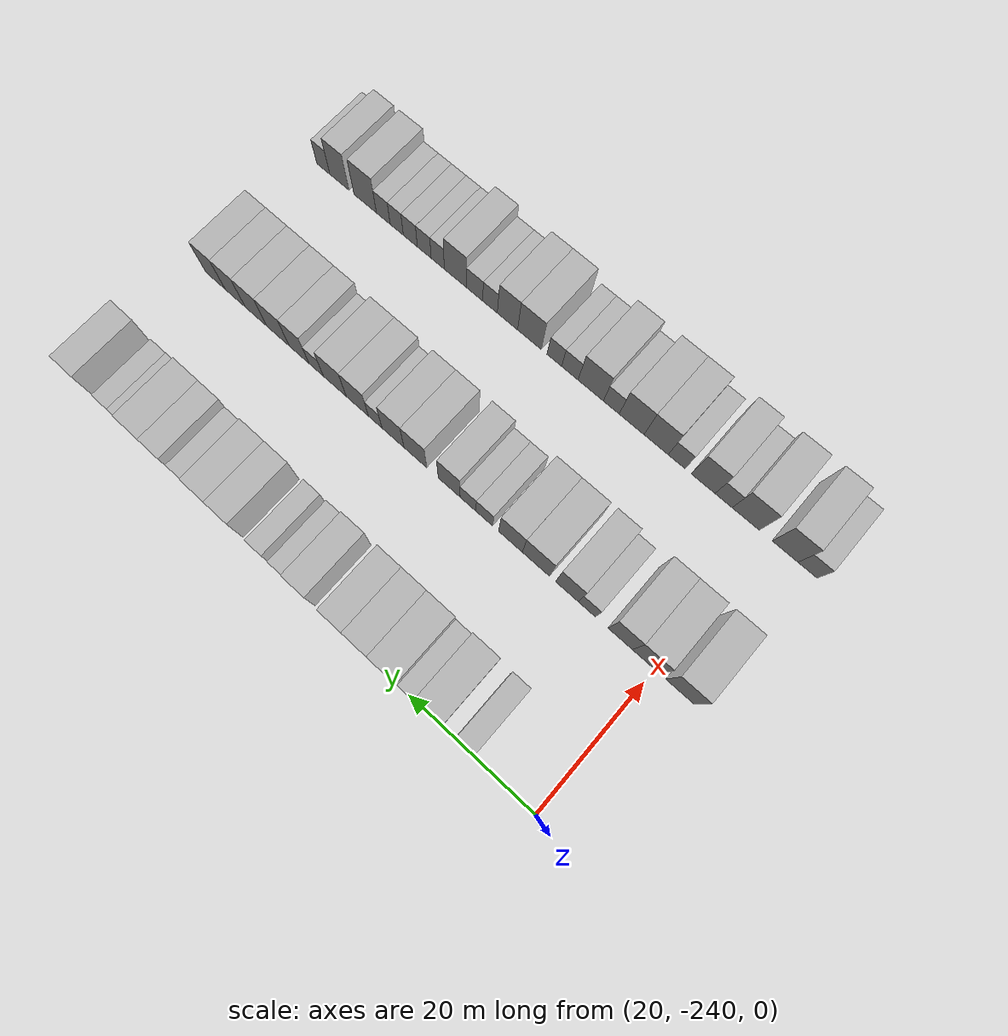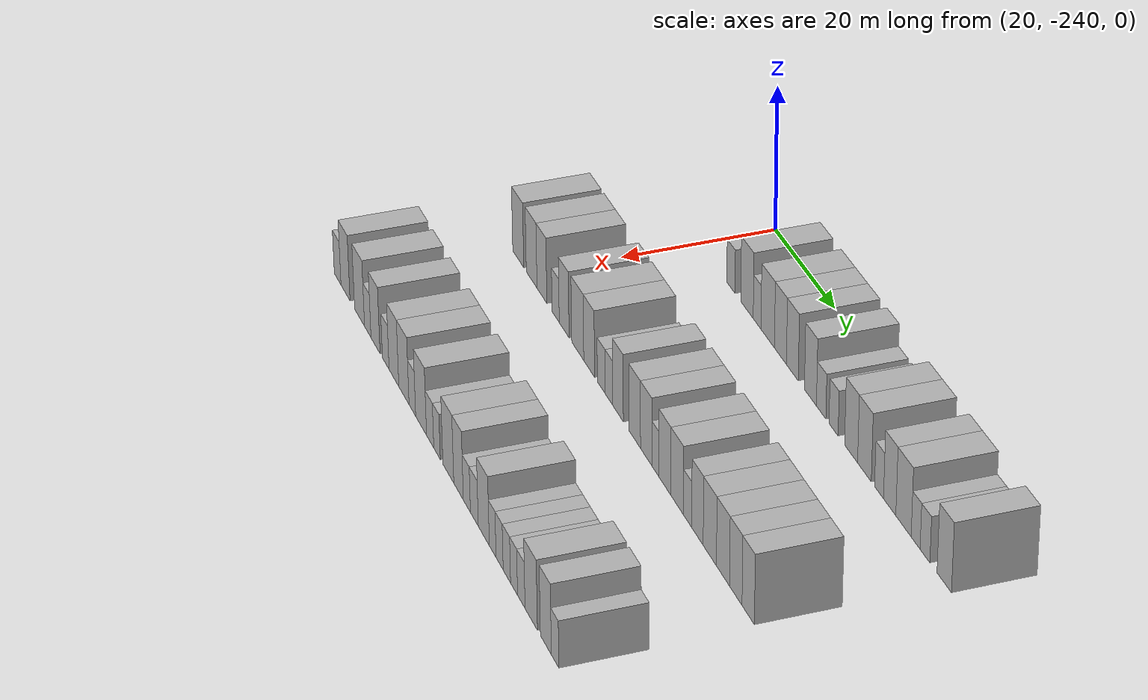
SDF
<sdf version="1.6">
 <world name="default">
  <model name="building_1">
   <static>1</static>
   <pose>25.0000 -228.7704 0 0.000000 0.000000 0.000000</pose>
   <link name="link">
    <pose>0 0 3.00 0 0 0</pose>
    <collision name="collision"><geometry><box><size>10.0000 2.8197 6.0000</size></box></geometry></collision>
    <visual name="visual">
     <cast_shadows>0</cast_shadows>
     <geometry><box><size>10.0000 2.8197 6.0000</size></box></geometry>
     <material>
      <script>
       <uri>model://HANNAS_wall/materials/scripts</uri>
       <uri>model://HANNAS_wall/materials/textures</uri>
       <name>vrc/HANNAS_wall</name>
      </script>
     </material>
    </visual>
   </link>
  </model>
  <model name="building_2">
   <static>1</static>
   <pose>25.0000 -223.2506 0 0.000000 0.000000 0.000000</pose>
   <link name="link">
    <pose>0 0 4.50 0 0 0</pose>
    <collision name="collision"><geometry><box><size>10.0000 4.2198 9.0000</size></box></geometry></collision>
    <visual name="visual">
     <cast_shadows>0</cast_shadows>
     <geometry><box><size>10.0000 4.2198 9.0000</size></box></geometry>
     <material>
      <script>
       <uri>model://HANNAS_wall/materials/scripts</uri>
       <uri>model://HANNAS_wall/materials/textures</uri>
       <name>vrc/HANNAS_wall</name>
      </script>
     </material>
    </visual>
   </link>
  </model>
  <model name="building_3">
   <static>1</static>
   <pose>25.0000 -219.8380 0 0.000000 0.000000 0.000000</pose>
   <link name="link">
    <pose>0 0 3.00 0 0 0</pose>
    <collision name="collision"><geometry><box><size>10.0000 2.6054 6.0000</size></box></geometry></collision>
    <visual name="visual">
     <cast_shadows>0</cast_shadows>
     <geometry><box><size>10.0000 2.6054 6.0000</size></box></geometry>
     <material>
      <script>
       <uri>model://HANNAS_wall/materials/scripts</uri>
       <uri>model://HANNAS_wall/materials/textures</uri>
       <name>vrc/HANNAS_wall</name>
      </script>
     </material>
    </visual>
   </link>
  </model>
  <model name="building_4">
   <static>1</static>
   <pose>25.0000 -216.2932 0 0.000000 0.000000 0.000000</pose>
   <link name="link">
    <pose>0 0 4.50 0 0 0</pose>
    <collision name="collision"><geometry><box><size>10.0000 4.4841 9.0000</size></box></geometry></collision>
    <visual name="visual">
     <cast_shadows>0</cast_shadows>
     <geometry><box><size>10.0000 4.4841 9.0000</size></box></geometry>
     <material>
      <script>
       <uri>model://HANNAS_wall/materials/scripts</uri>
       <uri>model://HANNAS_wall/materials/textures</uri>
       <name>vrc/HANNAS_wall</name>
      </script>
     </material>
    </visual>
   </link>
  </model>
  <model name="building_5">
   <static>1</static>
   <pose>25.0000 -212.0790 0 0.000000 0.000000 0.000000</pose>
   <link name="link">
    <pose>0 0 4.50 0 0 0</pose>
    <collision name="collision"><geometry><box><size>10.0000 3.9443 9.0000</size></box></geometry></collision>
    <visual name="visual">
     <cast_shadows>0</cast_shadows>
     <geometry><box><size>10.0000 3.9443 9.0000</size></box></geometry>
     <material>
      <script>
       <uri>model://HANNAS_wall/materials/scripts</uri>
       <uri>model://HANNAS_wall/materials/textures</uri>
       <name>vrc/HANNAS_wall</name>
      </script>
     </material>
    </visual>
   </link>
  </model>
  <model name="building_6">
   <static>1</static>
   <pose>25.0000 -208.1779 0 0.000000 0.000000 0.000000</pose>
   <link name="link">
    <pose>0 0 4.50 0 0 0</pose>
    <collision name="collision"><geometry><box><size>10.0000 3.8578 9.0000</size></box></geometry></collision>
    <visual name="visual">
     <cast_shadows>0</cast_shadows>
     <geometry><box><size>10.0000 3.8578 9.0000</size></box></geometry>
     <material>
      <script>
       <uri>model://HANNAS_wall/materials/scripts</uri>
       <uri>model://HANNAS_wall/materials/textures</uri>
       <name>vrc/HANNAS_wall</name>
      </script>
     </material>
    </visual>
   </link>
  </model>
  <model name="building_7">
   <static>1</static>
   <pose>25.0000 -202.3399 0 0.000000 0.000000 0.000000</pose>
   <link name="link">
    <pose>0 0 4.50 0 0 0</pose>
    <collision name="collision"><geometry><box><size>10.0000 3.8181 9.0000</size></box></geometry></collision>
    <visual name="visual">
     <cast_shadows>0</cast_shadows>
     <geometry><box><size>10.0000 3.8181 9.0000</size></box></geometry>
     <material>
      <script>
       <uri>model://HANNAS_wall/materials/scripts</uri>
       <uri>model://HANNAS_wall/materials/textures</uri>
       <name>vrc/HANNAS_wall</name>
      </script>
     </material>
    </visual>
   </link>
  </model>
  <model name="building_8">
   <static>1</static>
   <pose>25.0000 -198.9466 0 0.000000 0.000000 0.000000</pose>
   <link name="link">
    <pose>0 0 3.00 0 0 0</pose>
    <collision name="collision"><geometry><box><size>10.0000 2.9685 6.0000</size></box></geometry></collision>
    <visual name="visual">
     <cast_shadows>0</cast_shadows>
     <geometry><box><size>10.0000 2.9685 6.0000</size></box></geometry>
     <material>
      <script>
       <uri>model://HANNAS_wall/materials/scripts</uri>
       <uri>model://HANNAS_wall/materials/textures</uri>
       <name>vrc/HANNAS_wall</name>
      </script>
     </material>
    </visual>
   </link>
  </model>
  <model name="building_9">
   <static>1</static>
   <pose>25.0000 -195.0524 0 0.000000 0.000000 0.000000</pose>
   <link name="link">
    <pose>0 0 3.00 0 0 0</pose>
    <collision name="collision"><geometry><box><size>10.0000 2.8199 6.0000</size></box></geometry></collision>
    <visual name="visual">
     <cast_shadows>0</cast_shadows>
     <geometry><box><size>10.0000 2.8199 6.0000</size></box></geometry>
     <material>
      <script>
       <uri>model://HANNAS_wall/materials/scripts</uri>
       <uri>model://HANNAS_wall/materials/textures</uri>
       <name>vrc/HANNAS_wall</name>
      </script>
     </material>
    </visual>
   </link>
  </model>
  <model name="building_10">
   <static>1</static>
   <pose>25.0000 -189.6579 0 0.000000 0.000000 0.000000</pose>
   <link name="link">
    <pose>0 0 4.50 0 0 0</pose>
    <collision name="collision"><geometry><box><size>10.0000 3.9692 9.0000</size></box></geometry></collision>
    <visual name="visual">
     <cast_shadows>0</cast_shadows>
     <geometry><box><size>10.0000 3.9692 9.0000</size></box></geometry>
     <material>
      <script>
       <uri>model://HANNAS_wall/materials/scripts</uri>
       <uri>model://HANNAS_wall/materials/textures</uri>
       <name>vrc/HANNAS_wall</name>
      </script>
     </material>
    </visual>
   </link>
  </model>
  <model name="building_11">
   <static>1</static>
   <pose>25.0000 -185.6119 0 0.000000 0.000000 0.000000</pose>
   <link name="link">
    <pose>0 0 4.50 0 0 0</pose>
    <collision name="collision"><geometry><box><size>10.0000 4.1227 9.0000</size></box></geometry></collision>
    <visual name="visual">
     <cast_shadows>0</cast_shadows>
     <geometry><box><size>10.0000 4.1227 9.0000</size></box></geometry>
     <material>
      <script>
       <uri>model://HANNAS_wall/materials/scripts</uri>
       <uri>model://HANNAS_wall/materials/textures</uri>
       <name>vrc/HANNAS_wall</name>
      </script>
     </material>
    </visual>
   </link>
  </model>
  <model name="building_12">
   <static>1</static>
   <pose>25.0000 -181.2308 0 0.000000 0.000000 0.000000</pose>
   <link name="link">
    <pose>0 0 3.00 0 0 0</pose>
    <collision name="collision"><geometry><box><size>10.0000 2.6395 6.0000</size></box></geometry></collision>
    <visual name="visual">
     <cast_shadows>0</cast_shadows>
     <geometry><box><size>10.0000 2.6395 6.0000</size></box></geometry>
     <material>
      <script>
       <uri>model://HANNAS_wall/materials/scripts</uri>
       <uri>model://HANNAS_wall/materials/textures</uri>
       <name>vrc/HANNAS_wall</name>
      </script>
     </material>
    </visual>
   </link>
  </model>
  <model name="building_13">
   <static>1</static>
   <pose>25.0000 -178.1024 0 0.000000 0.000000 0.000000</pose>
   <link name="link">
    <pose>0 0 4.50 0 0 0</pose>
    <collision name="collision"><geometry><box><size>10.0000 3.6172 9.0000</size></box></geometry></collision>
    <visual name="visual">
     <cast_shadows>0</cast_shadows>
     <geometry><box><size>10.0000 3.6172 9.0000</size></box></geometry>
     <material>
      <script>
       <uri>model://HANNAS_wall/materials/scripts</uri>
       <uri>model://HANNAS_wall/materials/textures</uri>
       <name>vrc/HANNAS_wall</name>
      </script>
     </material>
    </visual>
   </link>
  </model>
  <model name="building_14">
   <static>1</static>
   <pose>25.0000 -174.0741 0 0.000000 0.000000 0.000000</pose>
   <link name="link">
    <pose>0 0 4.50 0 0 0</pose>
    <collision name="collision"><geometry><box><size>10.0000 4.4394 9.0000</size></box></geometry></collision>
    <visual name="visual">
     <cast_shadows>0</cast_shadows>
     <geometry><box><size>10.0000 4.4394 9.0000</size></box></geometry>
     <material>
      <script>
       <uri>model://HANNAS_wall/materials/scripts</uri>
       <uri>model://HANNAS_wall/materials/textures</uri>
       <name>vrc/HANNAS_wall</name>
      </script>
     </material>
    </visual>
   </link>
  </model>
  <model name="building_15">
   <static>1</static>
   <pose>25.0000 -170.5755 0 0.000000 0.000000 0.000000</pose>
   <link name="link">
    <pose>0 0 3.00 0 0 0</pose>
    <collision name="collision"><geometry><box><size>10.0000 2.5579 6.0000</size></box></geometry></collision>
    <visual name="visual">
     <cast_shadows>0</cast_shadows>
     <geometry><box><size>10.0000 2.5579 6.0000</size></box></geometry>
     <material>
      <script>
       <uri>model://HANNAS_wall/materials/scripts</uri>
       <uri>model://HANNAS_wall/materials/textures</uri>
       <name>vrc/HANNAS_wall</name>
      </script>
     </material>
    </visual>
   </link>
  </model>
  <model name="building_16">
   <static>1</static>
   <pose>25.0000 -167.9083 0 0.000000 0.000000 0.000000</pose>
   <link name="link">
    <pose>0 0 3.00 0 0 0</pose>
    <collision name="collision"><geometry><box><size>10.0000 2.7765 6.0000</size></box></geometry></collision>
    <visual name="visual">
     <cast_shadows>0</cast_shadows>
     <geometry><box><size>10.0000 2.7765 6.0000</size></box></geometry>
     <material>
      <script>
       <uri>model://HANNAS_wall/materials/scripts</uri>
       <uri>model://HANNAS_wall/materials/textures</uri>
       <name>vrc/HANNAS_wall</name>
      </script>
     </material>
    </visual>
   </link>
  </model>
  <model name="building_17">
   <static>1</static>
   <pose>25.0000 -162.5040 0 0.000000 0.000000 0.000000</pose>
   <link name="link">
    <pose>0 0 4.50 0 0 0</pose>
    <collision name="collision"><geometry><box><size>10.0000 4.0319 9.0000</size></box></geometry></collision>
    <visual name="visual">
     <cast_shadows>0</cast_shadows>
     <geometry><box><size>10.0000 4.0319 9.0000</size></box></geometry>
     <material>
      <script>
       <uri>model://HANNAS_wall/materials/scripts</uri>
       <uri>model://HANNAS_wall/materials/textures</uri>
       <name>vrc/HANNAS_wall</name>
      </script>
     </material>
    </visual>
   </link>
  </model>
  <model name="building_123">
   <static>1</static>
   <pose>47.0000 -243.8187 0 0.000000 0.000000 0.000000</pose>
   <link name="link">
    <pose>0 0 4.50 0 0 0</pose>
    <collision name="collision"><geometry><box><size>10.0000 4.3626 9.0000</size></box></geometry></collision>
    <visual name="visual">
     <cast_shadows>0</cast_shadows>
     <geometry><box><size>10.0000 4.3626 9.0000</size></box></geometry>
     <material>
      <script>
       <uri>model://HANNAS_wall/materials/scripts</uri>
       <uri>model://HANNAS_wall/materials/textures</uri>
       <name>vrc/HANNAS_wall</name>
      </script>
     </material>
    </visual>
   </link>
  </model>
  <model name="building_124">
   <static>1</static>
   <pose>47.0000 -238.5457 0 0.000000 0.000000 0.000000</pose>
   <link name="link">
    <pose>0 0 4.50 0 0 0</pose>
    <collision name="collision"><geometry><box><size>10.0000 4.1833 9.0000</size></box></geometry></collision>
    <visual name="visual">
     <cast_shadows>0</cast_shadows>
     <geometry><box><size>10.0000 4.1833 9.0000</size></box></geometry>
     <material>
      <script>
       <uri>model://HANNAS_wall/materials/scripts</uri>
       <uri>model://HANNAS_wall/materials/textures</uri>
       <name>vrc/HANNAS_wall</name>
      </script>
     </material>
    </visual>
   </link>
  </model>
  <model name="building_125">
   <static>1</static>
   <pose>47.0000 -234.5533 0 0.000000 0.000000 0.000000</pose>
   <link name="link">
    <pose>0 0 4.50 0 0 0</pose>
    <collision name="collision"><geometry><box><size>10.0000 3.8015 9.0000</size></box></geometry></collision>
    <visual name="visual">
     <cast_shadows>0</cast_shadows>
     <geometry><box><size>10.0000 3.8015 9.0000</size></box></geometry>
     <material>
      <script>
       <uri>model://HANNAS_wall/materials/scripts</uri>
       <uri>model://HANNAS_wall/materials/textures</uri>
       <name>vrc/HANNAS_wall</name>
      </script>
     </material>
    </visual>
   </link>
  </model>
  <model name="building_126">
   <static>1</static>
   <pose>47.0000 -229.2931 0 0.000000 0.000000 0.000000</pose>
   <link name="link">
    <pose>0 0 3.00 0 0 0</pose>
    <collision name="collision"><geometry><box><size>10.0000 2.7189 6.0000</size></box></geometry></collision>
    <visual name="visual">
     <cast_shadows>0</cast_shadows>
     <geometry><box><size>10.0000 2.7189 6.0000</size></box></geometry>
     <material>
      <script>
       <uri>model://HANNAS_wall/materials/scripts</uri>
       <uri>model://HANNAS_wall/materials/textures</uri>
       <name>vrc/HANNAS_wall</name>
      </script>
     </material>
    </visual>
   </link>
  </model>
  <model name="building_127">
   <static>1</static>
   <pose>47.0000 -226.0896 0 0.000000 0.000000 0.000000</pose>
   <link name="link">
    <pose>0 0 4.50 0 0 0</pose>
    <collision name="collision"><geometry><box><size>10.0000 3.6881 9.0000</size></box></geometry></collision>
    <visual name="visual">
     <cast_shadows>0</cast_shadows>
     <geometry><box><size>10.0000 3.6881 9.0000</size></box></geometry>
     <material>
      <script>
       <uri>model://HANNAS_wall/materials/scripts</uri>
       <uri>model://HANNAS_wall/materials/textures</uri>
       <name>vrc/HANNAS_wall</name>
      </script>
     </material>
    </visual>
   </link>
  </model>
  <model name="building_128">
   <static>1</static>
   <pose>47.0000 -221.0190 0 0.000000 0.000000 0.000000</pose>
   <link name="link">
    <pose>0 0 4.50 0 0 0</pose>
    <collision name="collision"><geometry><box><size>10.0000 4.4533 9.0000</size></box></geometry></collision>
    <visual name="visual">
     <cast_shadows>0</cast_shadows>
     <geometry><box><size>10.0000 4.4533 9.0000</size></box></geometry>
     <material>
      <script>
       <uri>model://HANNAS_wall/materials/scripts</uri>
       <uri>model://HANNAS_wall/materials/textures</uri>
       <name>vrc/HANNAS_wall</name>
      </script>
     </material>
    </visual>
   </link>
  </model>
  <model name="building_129">
   <static>1</static>
   <pose>47.0000 -216.8144 0 0.000000 0.000000 0.000000</pose>
   <link name="link">
    <pose>0 0 4.50 0 0 0</pose>
    <collision name="collision"><geometry><box><size>10.0000 3.9557 9.0000</size></box></geometry></collision>
    <visual name="visual">
     <cast_shadows>0</cast_shadows>
     <geometry><box><size>10.0000 3.9557 9.0000</size></box></geometry>
     <material>
      <script>
       <uri>model://HANNAS_wall/materials/scripts</uri>
       <uri>model://HANNAS_wall/materials/textures</uri>
       <name>vrc/HANNAS_wall</name>
      </script>
     </material>
    </visual>
   </link>
  </model>
  <model name="building_130">
   <static>1</static>
   <pose>47.0000 -212.4229 0 0.000000 0.000000 0.000000</pose>
   <link name="link">
    <pose>0 0 3.00 0 0 0</pose>
    <collision name="collision"><geometry><box><size>10.0000 2.8273 6.0000</size></box></geometry></collision>
    <visual name="visual">
     <cast_shadows>0</cast_shadows>
     <geometry><box><size>10.0000 2.8273 6.0000</size></box></geometry>
     <material>
      <script>
       <uri>model://HANNAS_wall/materials/scripts</uri>
       <uri>model://HANNAS_wall/materials/textures</uri>
       <name>vrc/HANNAS_wall</name>
      </script>
     </material>
    </visual>
   </link>
  </model>
  <model name="building_131">
   <static>1</static>
   <pose>47.0000 -209.6768 0 0.000000 0.000000 0.000000</pose>
   <link name="link">
    <pose>0 0 3.00 0 0 0</pose>
    <collision name="collision"><geometry><box><size>10.0000 2.6649 6.0000</size></box></geometry></collision>
    <visual name="visual">
     <cast_shadows>0</cast_shadows>
     <geometry><box><size>10.0000 2.6649 6.0000</size></box></geometry>
     <material>
      <script>
       <uri>model://HANNAS_wall/materials/scripts</uri>
       <uri>model://HANNAS_wall/materials/textures</uri>
       <name>vrc/HANNAS_wall</name>
      </script>
     </material>
    </visual>
   </link>
  </model>
  <model name="building_132">
   <static>1</static>
   <pose>47.0000 -206.4759 0 0.000000 0.000000 0.000000</pose>
   <link name="link">
    <pose>0 0 4.50 0 0 0</pose>
    <collision name="collision"><geometry><box><size>10.0000 3.7370 9.0000</size></box></geometry></collision>
    <visual name="visual">
     <cast_shadows>0</cast_shadows>
     <geometry><box><size>10.0000 3.7370 9.0000</size></box></geometry>
     <material>
      <script>
       <uri>model://HANNAS_wall/materials/scripts</uri>
       <uri>model://HANNAS_wall/materials/textures</uri>
       <name>vrc/HANNAS_wall</name>
      </script>
     </material>
    </visual>
   </link>
  </model>
  <model name="building_133">
   <static>1</static>
   <pose>47.0000 -200.6277 0 0.000000 0.000000 0.000000</pose>
   <link name="link">
    <pose>0 0 4.50 0 0 0</pose>
    <collision name="collision"><geometry><box><size>10.0000 3.9593 9.0000</size></box></geometry></collision>
    <visual name="visual">
     <cast_shadows>0</cast_shadows>
     <geometry><box><size>10.0000 3.9593 9.0000</size></box></geometry>
     <material>
      <script>
       <uri>model://HANNAS_wall/materials/scripts</uri>
       <uri>model://HANNAS_wall/materials/textures</uri>
       <name>vrc/HANNAS_wall</name>
      </script>
     </material>
    </visual>
   </link>
  </model>
  <model name="building_134">
   <static>1</static>
   <pose>47.0000 -196.7128 0 0.000000 0.000000 0.000000</pose>
   <link name="link">
    <pose>0 0 4.50 0 0 0</pose>
    <collision name="collision"><geometry><box><size>10.0000 3.8705 9.0000</size></box></geometry></collision>
    <visual name="visual">
     <cast_shadows>0</cast_shadows>
     <geometry><box><size>10.0000 3.8705 9.0000</size></box></geometry>
     <material>
      <script>
       <uri>model://HANNAS_wall/materials/scripts</uri>
       <uri>model://HANNAS_wall/materials/textures</uri>
       <name>vrc/HANNAS_wall</name>
      </script>
     </material>
    </visual>
   </link>
  </model>
  <model name="building_135">
   <static>1</static>
   <pose>47.0000 -193.5745 0 0.000000 0.000000 0.000000</pose>
   <link name="link">
    <pose>0 0 3.00 0 0 0</pose>
    <collision name="collision"><geometry><box><size>10.0000 2.4060 6.0000</size></box></geometry></collision>
    <visual name="visual">
     <cast_shadows>0</cast_shadows>
     <geometry><box><size>10.0000 2.4060 6.0000</size></box></geometry>
     <material>
      <script>
       <uri>model://HANNAS_wall/materials/scripts</uri>
       <uri>model://HANNAS_wall/materials/textures</uri>
       <name>vrc/HANNAS_wall</name>
      </script>
     </material>
    </visual>
   </link>
  </model>
  <model name="building_136">
   <static>1</static>
   <pose>47.0000 -190.3718 0 0.000000 0.000000 0.000000</pose>
   <link name="link">
    <pose>0 0 4.50 0 0 0</pose>
    <collision name="collision"><geometry><box><size>10.0000 3.9995 9.0000</size></box></geometry></collision>
    <visual name="visual">
     <cast_shadows>0</cast_shadows>
     <geometry><box><size>10.0000 3.9995 9.0000</size></box></geometry>
     <material>
      <script>
       <uri>model://HANNAS_wall/materials/scripts</uri>
       <uri>model://HANNAS_wall/materials/textures</uri>
       <name>vrc/HANNAS_wall</name>
      </script>
     </material>
    </visual>
   </link>
  </model>
  <model name="building_137">
   <static>1</static>
   <pose>47.0000 -186.2881 0 0.000000 0.000000 0.000000</pose>
   <link name="link">
    <pose>0 0 4.50 0 0 0</pose>
    <collision name="collision"><geometry><box><size>10.0000 4.1679 9.0000</size></box></geometry></collision>
    <visual name="visual">
     <cast_shadows>0</cast_shadows>
     <geometry><box><size>10.0000 4.1679 9.0000</size></box></geometry>
     <material>
      <script>
       <uri>model://HANNAS_wall/materials/scripts</uri>
       <uri>model://HANNAS_wall/materials/textures</uri>
       <name>vrc/HANNAS_wall</name>
      </script>
     </material>
    </visual>
   </link>
  </model>
  <model name="building_138">
   <static>1</static>
   <pose>47.0000 -182.8716 0 0.000000 0.000000 0.000000</pose>
   <link name="link">
    <pose>0 0 3.00 0 0 0</pose>
    <collision name="collision"><geometry><box><size>10.0000 2.6651 6.0000</size></box></geometry></collision>
    <visual name="visual">
     <cast_shadows>0</cast_shadows>
     <geometry><box><size>10.0000 2.6651 6.0000</size></box></geometry>
     <material>
      <script>
       <uri>model://HANNAS_wall/materials/scripts</uri>
       <uri>model://HANNAS_wall/materials/textures</uri>
       <name>vrc/HANNAS_wall</name>
      </script>
     </material>
    </visual>
   </link>
  </model>
  <model name="building_139">
   <static>1</static>
   <pose>47.0000 -179.7136 0 0.000000 0.000000 0.000000</pose>
   <link name="link">
    <pose>0 0 4.50 0 0 0</pose>
    <collision name="collision"><geometry><box><size>10.0000 3.6508 9.0000</size></box></geometry></collision>
    <visual name="visual">
     <cast_shadows>0</cast_shadows>
     <geometry><box><size>10.0000 3.6508 9.0000</size></box></geometry>
     <material>
      <script>
       <uri>model://HANNAS_wall/materials/scripts</uri>
       <uri>model://HANNAS_wall/materials/textures</uri>
       <name>vrc/HANNAS_wall</name>
      </script>
     </material>
    </visual>
   </link>
  </model>
  <model name="building_140">
   <static>1</static>
   <pose>47.0000 -175.7769 0 0.000000 0.000000 0.000000</pose>
   <link name="link">
    <pose>0 0 4.50 0 0 0</pose>
    <collision name="collision"><geometry><box><size>10.0000 4.2226 9.0000</size></box></geometry></collision>
    <visual name="visual">
     <cast_shadows>0</cast_shadows>
     <geometry><box><size>10.0000 4.2226 9.0000</size></box></geometry>
     <material>
      <script>
       <uri>model://HANNAS_wall/materials/scripts</uri>
       <uri>model://HANNAS_wall/materials/textures</uri>
       <name>vrc/HANNAS_wall</name>
      </script>
     </material>
    </visual>
   </link>
  </model>
  <model name="building_141">
   <static>1</static>
   <pose>47.0000 -171.6212 0 0.000000 0.000000 0.000000</pose>
   <link name="link">
    <pose>0 0 4.50 0 0 0</pose>
    <collision name="collision"><geometry><box><size>10.0000 4.0888 9.0000</size></box></geometry></collision>
    <visual name="visual">
     <cast_shadows>0</cast_shadows>
     <geometry><box><size>10.0000 4.0888 9.0000</size></box></geometry>
     <material>
      <script>
       <uri>model://HANNAS_wall/materials/scripts</uri>
       <uri>model://HANNAS_wall/materials/textures</uri>
       <name>vrc/HANNAS_wall</name>
      </script>
     </material>
    </visual>
   </link>
  </model>
  <model name="building_142">
   <static>1</static>
   <pose>47.0000 -167.6529 0 0.000000 0.000000 0.000000</pose>
   <link name="link">
    <pose>0 0 4.50 0 0 0</pose>
    <collision name="collision"><geometry><box><size>10.0000 3.8476 9.0000</size></box></geometry></collision>
    <visual name="visual">
     <cast_shadows>0</cast_shadows>
     <geometry><box><size>10.0000 3.8476 9.0000</size></box></geometry>
     <material>
      <script>
       <uri>model://HANNAS_wall/materials/scripts</uri>
       <uri>model://HANNAS_wall/materials/textures</uri>
       <name>vrc/HANNAS_wall</name>
      </script>
     </material>
    </visual>
   </link>
  </model>
  <model name="building_143">
   <static>1</static>
   <pose>47.0000 -163.8472 0 0.000000 0.000000 0.000000</pose>
   <link name="link">
    <pose>0 0 4.50 0 0 0</pose>
    <collision name="collision"><geometry><box><size>10.0000 3.7638 9.0000</size></box></geometry></collision>
    <visual name="visual">
     <cast_shadows>0</cast_shadows>
     <geometry><box><size>10.0000 3.7638 9.0000</size></box></geometry>
     <material>
      <script>
       <uri>model://HANNAS_wall/materials/scripts</uri>
       <uri>model://HANNAS_wall/materials/textures</uri>
       <name>vrc/HANNAS_wall</name>
      </script>
     </material>
    </visual>
   </link>
  </model>
  <model name="building_255">
   <static>1</static>
   <pose>69.0000 -246.5243 0 0.000000 0.000000 0.000000</pose>
   <link name="link">
    <pose>0 0 3.00 0 0 0</pose>
    <collision name="collision"><geometry><box><size>10.0000 2.9514 6.0000</size></box></geometry></collision>
    <visual name="visual">
     <cast_shadows>0</cast_shadows>
     <geometry><box><size>10.0000 2.9514 6.0000</size></box></geometry>
     <material>
      <script>
       <uri>model://HANNAS_wall/materials/scripts</uri>
       <uri>model://HANNAS_wall/materials/textures</uri>
       <name>vrc/HANNAS_wall</name>
      </script>
     </material>
    </visual>
   </link>
  </model>
  <model name="building_256">
   <static>1</static>
   <pose>69.0000 -243.0590 0 0.000000 0.000000 0.000000</pose>
   <link name="link">
    <pose>0 0 4.50 0 0 0</pose>
    <collision name="collision"><geometry><box><size>10.0000 3.9793 9.0000</size></box></geometry></collision>
    <visual name="visual">
     <cast_shadows>0</cast_shadows>
     <geometry><box><size>10.0000 3.9793 9.0000</size></box></geometry>
     <material>
      <script>
       <uri>model://HANNAS_wall/materials/scripts</uri>
       <uri>model://HANNAS_wall/materials/textures</uri>
       <name>vrc/HANNAS_wall</name>
      </script>
     </material>
    </visual>
   </link>
  </model>
  <model name="building_257">
   <static>1</static>
   <pose>69.0000 -236.9261 0 0.000000 0.000000 0.000000</pose>
   <link name="link">
    <pose>0 0 4.50 0 0 0</pose>
    <collision name="collision"><geometry><box><size>10.0000 4.2864 9.0000</size></box></geometry></collision>
    <visual name="visual">
     <cast_shadows>0</cast_shadows>
     <geometry><box><size>10.0000 4.2864 9.0000</size></box></geometry>
     <material>
      <script>
       <uri>model://HANNAS_wall/materials/scripts</uri>
       <uri>model://HANNAS_wall/materials/textures</uri>
       <name>vrc/HANNAS_wall</name>
      </script>
     </material>
    </visual>
   </link>
  </model>
  <model name="building_258">
   <static>1</static>
   <pose>69.0000 -233.4128 0 0.000000 0.000000 0.000000</pose>
   <link name="link">
    <pose>0 0 3.00 0 0 0</pose>
    <collision name="collision"><geometry><box><size>10.0000 2.7403 6.0000</size></box></geometry></collision>
    <visual name="visual">
     <cast_shadows>0</cast_shadows>
     <geometry><box><size>10.0000 2.7403 6.0000</size></box></geometry>
     <material>
      <script>
       <uri>model://HANNAS_wall/materials/scripts</uri>
       <uri>model://HANNAS_wall/materials/textures</uri>
       <name>vrc/HANNAS_wall</name>
      </script>
     </material>
    </visual>
   </link>
  </model>
  <model name="building_259">
   <static>1</static>
   <pose>69.0000 -230.1309 0 0.000000 0.000000 0.000000</pose>
   <link name="link">
    <pose>0 0 4.50 0 0 0</pose>
    <collision name="collision"><geometry><box><size>10.0000 3.8235 9.0000</size></box></geometry></collision>
    <visual name="visual">
     <cast_shadows>0</cast_shadows>
     <geometry><box><size>10.0000 3.8235 9.0000</size></box></geometry>
     <material>
      <script>
       <uri>model://HANNAS_wall/materials/scripts</uri>
       <uri>model://HANNAS_wall/materials/textures</uri>
       <name>vrc/HANNAS_wall</name>
      </script>
     </material>
    </visual>
   </link>
  </model>
  <model name="building_260">
   <static>1</static>
   <pose>69.0000 -225.8399 0 0.000000 0.000000 0.000000</pose>
   <link name="link">
    <pose>0 0 3.00 0 0 0</pose>
    <collision name="collision"><geometry><box><size>10.0000 2.7583 6.0000</size></box></geometry></collision>
    <visual name="visual">
     <cast_shadows>0</cast_shadows>
     <geometry><box><size>10.0000 2.7583 6.0000</size></box></geometry>
     <material>
      <script>
       <uri>model://HANNAS_wall/materials/scripts</uri>
       <uri>model://HANNAS_wall/materials/textures</uri>
       <name>vrc/HANNAS_wall</name>
      </script>
     </material>
    </visual>
   </link>
  </model>
  <model name="building_261">
   <static>1</static>
   <pose>69.0000 -222.4623 0 0.000000 0.000000 0.000000</pose>
   <link name="link">
    <pose>0 0 4.50 0 0 0</pose>
    <collision name="collision"><geometry><box><size>10.0000 3.9969 9.0000</size></box></geometry></collision>
    <visual name="visual">
     <cast_shadows>0</cast_shadows>
     <geometry><box><size>10.0000 3.9969 9.0000</size></box></geometry>
     <material>
      <script>
       <uri>model://HANNAS_wall/materials/scripts</uri>
       <uri>model://HANNAS_wall/materials/textures</uri>
       <name>vrc/HANNAS_wall</name>
      </script>
     </material>
    </visual>
   </link>
  </model>
  <model name="building_262">
   <static>1</static>
   <pose>69.0000 -218.3861 0 0.000000 0.000000 0.000000</pose>
   <link name="link">
    <pose>0 0 4.50 0 0 0</pose>
    <collision name="collision"><geometry><box><size>10.0000 4.1555 9.0000</size></box></geometry></collision>
    <visual name="visual">
     <cast_shadows>0</cast_shadows>
     <geometry><box><size>10.0000 4.1555 9.0000</size></box></geometry>
     <material>
      <script>
       <uri>model://HANNAS_wall/materials/scripts</uri>
       <uri>model://HANNAS_wall/materials/textures</uri>
       <name>vrc/HANNAS_wall</name>
      </script>
     </material>
    </visual>
   </link>
  </model>
  <model name="building_263">
   <static>1</static>
   <pose>69.0000 -214.9794 0 0.000000 0.000000 0.000000</pose>
   <link name="link">
    <pose>0 0 3.00 0 0 0</pose>
    <collision name="collision"><geometry><box><size>10.0000 2.6578 6.0000</size></box></geometry></collision>
    <visual name="visual">
     <cast_shadows>0</cast_shadows>
     <geometry><box><size>10.0000 2.6578 6.0000</size></box></geometry>
     <material>
      <script>
       <uri>model://HANNAS_wall/materials/scripts</uri>
       <uri>model://HANNAS_wall/materials/textures</uri>
       <name>vrc/HANNAS_wall</name>
      </script>
     </material>
    </visual>
   </link>
  </model>
  <model name="building_264">
   <static>1</static>
   <pose>69.0000 -211.4903 0 0.000000 0.000000 0.000000</pose>
   <link name="link">
    <pose>0 0 4.50 0 0 0</pose>
    <collision name="collision"><geometry><box><size>10.0000 4.3205 9.0000</size></box></geometry></collision>
    <visual name="visual">
     <cast_shadows>0</cast_shadows>
     <geometry><box><size>10.0000 4.3205 9.0000</size></box></geometry>
     <material>
      <script>
       <uri>model://HANNAS_wall/materials/scripts</uri>
       <uri>model://HANNAS_wall/materials/textures</uri>
       <name>vrc/HANNAS_wall</name>
      </script>
     </material>
    </visual>
   </link>
  </model>
  <model name="building_265">
   <static>1</static>
   <pose>69.0000 -207.9169 0 0.000000 0.000000 0.000000</pose>
   <link name="link">
    <pose>0 0 3.00 0 0 0</pose>
    <collision name="collision"><geometry><box><size>10.0000 2.8262 6.0000</size></box></geometry></collision>
    <visual name="visual">
     <cast_shadows>0</cast_shadows>
     <geometry><box><size>10.0000 2.8262 6.0000</size></box></geometry>
     <material>
      <script>
       <uri>model://HANNAS_wall/materials/scripts</uri>
       <uri>model://HANNAS_wall/materials/textures</uri>
       <name>vrc/HANNAS_wall</name>
      </script>
     </material>
    </visual>
   </link>
  </model>
  <model name="building_266">
   <static>1</static>
   <pose>69.0000 -205.2341 0 0.000000 0.000000 0.000000</pose>
   <link name="link">
    <pose>0 0 3.00 0 0 0</pose>
    <collision name="collision"><geometry><box><size>10.0000 2.5393 6.0000</size></box></geometry></collision>
    <visual name="visual">
     <cast_shadows>0</cast_shadows>
     <geometry><box><size>10.0000 2.5393 6.0000</size></box></geometry>
     <material>
      <script>
       <uri>model://HANNAS_wall/materials/scripts</uri>
       <uri>model://HANNAS_wall/materials/textures</uri>
       <name>vrc/HANNAS_wall</name>
      </script>
     </material>
    </visual>
   </link>
  </model>
  <model name="building_267">
   <static>1</static>
   <pose>69.0000 -200.8759 0 0.000000 0.000000 0.000000</pose>
   <link name="link">
    <pose>0 0 4.50 0 0 0</pose>
    <collision name="collision"><geometry><box><size>10.0000 4.1771 9.0000</size></box></geometry></collision>
    <visual name="visual">
     <cast_shadows>0</cast_shadows>
     <geometry><box><size>10.0000 4.1771 9.0000</size></box></geometry>
     <material>
      <script>
       <uri>model://HANNAS_wall/materials/scripts</uri>
       <uri>model://HANNAS_wall/materials/textures</uri>
       <name>vrc/HANNAS_wall</name>
      </script>
     </material>
    </visual>
   </link>
  </model>
  <model name="building_268">
   <static>1</static>
   <pose>69.0000 -196.9873 0 0.000000 0.000000 0.000000</pose>
   <link name="link">
    <pose>0 0 4.50 0 0 0</pose>
    <collision name="collision"><geometry><box><size>10.0000 3.6001 9.0000</size></box></geometry></collision>
    <visual name="visual">
     <cast_shadows>0</cast_shadows>
     <geometry><box><size>10.0000 3.6001 9.0000</size></box></geometry>
     <material>
      <script>
       <uri>model://HANNAS_wall/materials/scripts</uri>
       <uri>model://HANNAS_wall/materials/textures</uri>
       <name>vrc/HANNAS_wall</name>
      </script>
     </material>
    </visual>
   </link>
  </model>
  <model name="building_269">
   <static>1</static>
   <pose>69.0000 -193.8674 0 0.000000 0.000000 0.000000</pose>
   <link name="link">
    <pose>0 0 3.00 0 0 0</pose>
    <collision name="collision"><geometry><box><size>10.0000 2.6396 6.0000</size></box></geometry></collision>
    <visual name="visual">
     <cast_shadows>0</cast_shadows>
     <geometry><box><size>10.0000 2.6396 6.0000</size></box></geometry>
     <material>
      <script>
       <uri>model://HANNAS_wall/materials/scripts</uri>
       <uri>model://HANNAS_wall/materials/textures</uri>
       <name>vrc/HANNAS_wall</name>
      </script>
     </material>
    </visual>
   </link>
  </model>
  <model name="building_270">
   <static>1</static>
   <pose>69.0000 -191.0853 0 0.000000 0.000000 0.000000</pose>
   <link name="link">
    <pose>0 0 3.00 0 0 0</pose>
    <collision name="collision"><geometry><box><size>10.0000 2.9247 6.0000</size></box></geometry></collision>
    <visual name="visual">
     <cast_shadows>0</cast_shadows>
     <geometry><box><size>10.0000 2.9247 6.0000</size></box></geometry>
     <material>
      <script>
       <uri>model://HANNAS_wall/materials/scripts</uri>
       <uri>model://HANNAS_wall/materials/textures</uri>
       <name>vrc/HANNAS_wall</name>
      </script>
     </material>
    </visual>
   </link>
  </model>
  <model name="building_271">
   <static>1</static>
   <pose>69.0000 -187.6061 0 0.000000 0.000000 0.000000</pose>
   <link name="link">
    <pose>0 0 4.50 0 0 0</pose>
    <collision name="collision"><geometry><box><size>10.0000 4.0336 9.0000</size></box></geometry></collision>
    <visual name="visual">
     <cast_shadows>0</cast_shadows>
     <geometry><box><size>10.0000 4.0336 9.0000</size></box></geometry>
     <material>
      <script>
       <uri>model://HANNAS_wall/materials/scripts</uri>
       <uri>model://HANNAS_wall/materials/textures</uri>
       <name>vrc/HANNAS_wall</name>
      </script>
     </material>
    </visual>
   </link>
  </model>
  <model name="building_272">
   <static>1</static>
   <pose>69.0000 -184.3770 0 0.000000 0.000000 0.000000</pose>
   <link name="link">
    <pose>0 0 3.00 0 0 0</pose>
    <collision name="collision"><geometry><box><size>10.0000 2.4246 6.0000</size></box></geometry></collision>
    <visual name="visual">
     <cast_shadows>0</cast_shadows>
     <geometry><box><size>10.0000 2.4246 6.0000</size></box></geometry>
     <material>
      <script>
       <uri>model://HANNAS_wall/materials/scripts</uri>
       <uri>model://HANNAS_wall/materials/textures</uri>
       <name>vrc/HANNAS_wall</name>
      </script>
     </material>
    </visual>
   </link>
  </model>
  <model name="building_273">
   <static>1</static>
   <pose>69.0000 -181.8881 0 0.000000 0.000000 0.000000</pose>
   <link name="link">
    <pose>0 0 3.00 0 0 0</pose>
    <collision name="collision"><geometry><box><size>10.0000 2.5534 6.0000</size></box></geometry></collision>
    <visual name="visual">
     <cast_shadows>0</cast_shadows>
     <geometry><box><size>10.0000 2.5534 6.0000</size></box></geometry>
     <material>
      <script>
       <uri>model://HANNAS_wall/materials/scripts</uri>
       <uri>model://HANNAS_wall/materials/textures</uri>
       <name>vrc/HANNAS_wall</name>
      </script>
     </material>
    </visual>
   </link>
  </model>
  <model name="building_274">
   <static>1</static>
   <pose>69.0000 -179.2985 0 0.000000 0.000000 0.000000</pose>
   <link name="link">
    <pose>0 0 3.00 0 0 0</pose>
    <collision name="collision"><geometry><box><size>10.0000 2.6256 6.0000</size></box></geometry></collision>
    <visual name="visual">
     <cast_shadows>0</cast_shadows>
     <geometry><box><size>10.0000 2.6256 6.0000</size></box></geometry>
     <material>
      <script>
       <uri>model://HANNAS_wall/materials/scripts</uri>
       <uri>model://HANNAS_wall/materials/textures</uri>
       <name>vrc/HANNAS_wall</name>
      </script>
     </material>
    </visual>
   </link>
  </model>
  <model name="building_275">
   <static>1</static>
   <pose>69.0000 -176.7551 0 0.000000 0.000000 0.000000</pose>
   <link name="link">
    <pose>0 0 3.00 0 0 0</pose>
    <collision name="collision"><geometry><box><size>10.0000 2.4612 6.0000</size></box></geometry></collision>
    <visual name="visual">
     <cast_shadows>0</cast_shadows>
     <geometry><box><size>10.0000 2.4612 6.0000</size></box></geometry>
     <material>
      <script>
       <uri>model://HANNAS_wall/materials/scripts</uri>
       <uri>model://HANNAS_wall/materials/textures</uri>
       <name>vrc/HANNAS_wall</name>
      </script>
     </material>
    </visual>
   </link>
  </model>
  <model name="building_276">
   <static>1</static>
   <pose>69.0000 -174.2179 0 0.000000 0.000000 0.000000</pose>
   <link name="link">
    <pose>0 0 3.00 0 0 0</pose>
    <collision name="collision"><geometry><box><size>10.0000 2.6133 6.0000</size></box></geometry></collision>
    <visual name="visual">
     <cast_shadows>0</cast_shadows>
     <geometry><box><size>10.0000 2.6133 6.0000</size></box></geometry>
     <material>
      <script>
       <uri>model://HANNAS_wall/materials/scripts</uri>
       <uri>model://HANNAS_wall/materials/textures</uri>
       <name>vrc/HANNAS_wall</name>
      </script>
     </material>
    </visual>
   </link>
  </model>
  <model name="building_277">
   <static>1</static>
   <pose>69.0000 -170.7728 0 0.000000 0.000000 0.000000</pose>
   <link name="link">
    <pose>0 0 4.50 0 0 0</pose>
    <collision name="collision"><geometry><box><size>10.0000 4.2768 9.0000</size></box></geometry></collision>
    <visual name="visual">
     <cast_shadows>0</cast_shadows>
     <geometry><box><size>10.0000 4.2768 9.0000</size></box></geometry>
     <material>
      <script>
       <uri>model://HANNAS_wall/materials/scripts</uri>
       <uri>model://HANNAS_wall/materials/textures</uri>
       <name>vrc/HANNAS_wall</name>
      </script>
     </material>
    </visual>
   </link>
  </model>
  <model name="building_278">
   <static>1</static>
   <pose>69.0000 -165.7769 0 0.000000 0.000000 0.000000</pose>
   <link name="link">
    <pose>0 0 4.50 0 0 0</pose>
    <collision name="collision"><geometry><box><size>10.0000 3.7151 9.0000</size></box></geometry></collision>
    <visual name="visual">
     <cast_shadows>0</cast_shadows>
     <geometry><box><size>10.0000 3.7151 9.0000</size></box></geometry>
     <material>
      <script>
       <uri>model://HANNAS_wall/materials/scripts</uri>
       <uri>model://HANNAS_wall/materials/textures</uri>
       <name>vrc/HANNAS_wall</name>
      </script>
     </material>
    </visual>
   </link>
  </model>
  <model name="building_279">
   <static>1</static>
   <pose>69.0000 -162.6597 0 0.000000 0.000000 0.000000</pose>
   <link name="link">
    <pose>0 0 3.00 0 0 0</pose>
    <collision name="collision"><geometry><box><size>10.0000 2.5192 6.0000</size></box></geometry></collision>
    <visual name="visual">
     <cast_shadows>0</cast_shadows>
     <geometry><box><size>10.0000 2.5192 6.0000</size></box></geometry>
     <material>
      <script>
       <uri>model://HANNAS_wall/materials/scripts</uri>
       <uri>model://HANNAS_wall/materials/textures</uri>
       <name>vrc/HANNAS_wall</name>
      </script>
     </material>
    </visual>
   </link>
  </model>
 </world>
</sdf>
